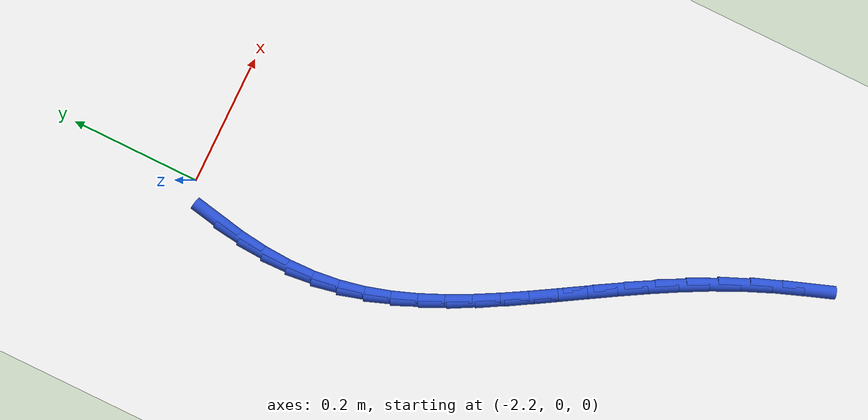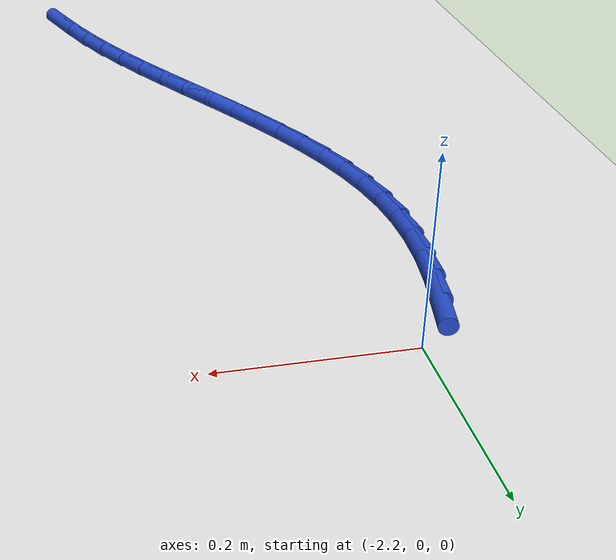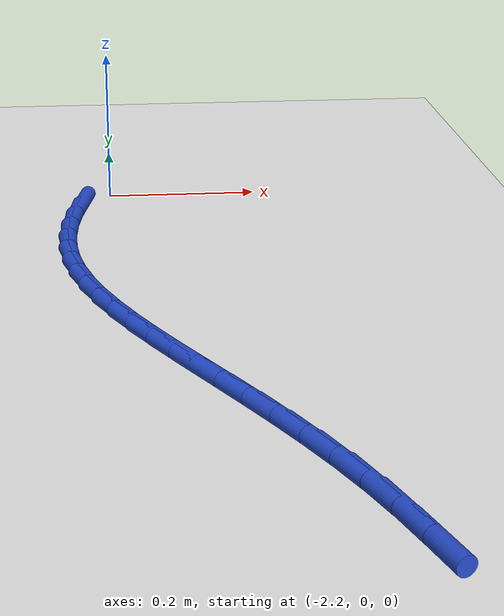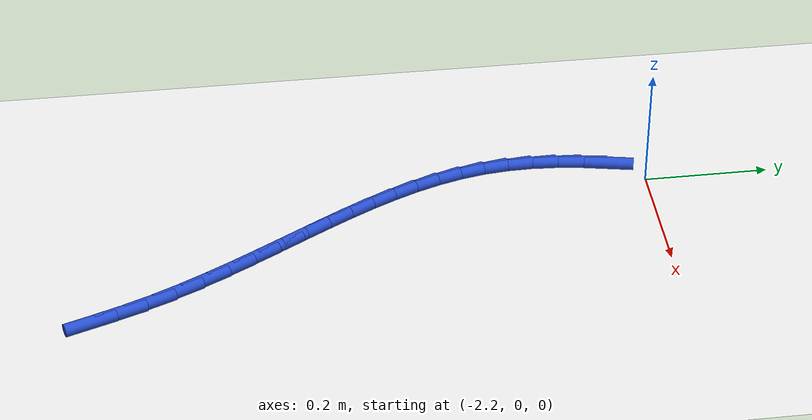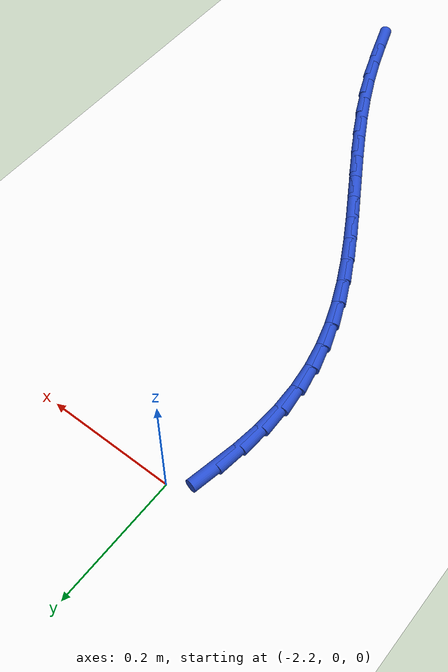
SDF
<sdf version="1.6">
 <world name="default">
  <model name="ground_plane">
   <static>1</static>
   <link name="link">
    <collision name="collision">
     <geometry><plane><normal>0 0 1</normal><size>100 100</size></plane></geometry>
     <surface><friction><ode><mu>100</mu><mu2>50</mu2></ode></friction></surface>
    </collision>
    <visual name="visual">
     <cast_shadows>0</cast_shadows>
     <geometry><plane><normal>0 0 1</normal><size>100 100</size></plane></geometry>
     <material>
      <script><uri>file://media/materials/scripts/gazebo.material</uri><name>Gazebo/WhiteGlow</name></script>
     </material>
    </visual>
   </link>
  </model>
  <model name="line">
   <link name="link_86">
    <pose>-2.2377645160590043 -0.05372641438890864 0.01 0 1.57 1.3761820714155157</pose>
    <collision name="collision">
     <geometry><cylinder><radius>0.01</radius><length>0.08</length></cylinder></geometry>
    </collision>
    <visual name="visual">
     <material>
      <script><name>Gazebo/Blue</name><uri>file://media/materials/scripts/gazebo.material</uri></script>
     </material>
     <geometry><cylinder><radius>0.01</radius><length>0.08</length></cylinder></geometry>
    </visual>
   </link>
   <link name="link_87">
    <pose>-2.2459971719491008 -0.09549342681061923 0.01 0 1.57 1.4425033524744262</pose>
    <collision name="collision">
     <geometry><cylinder><radius>0.01</radius><length>0.08</length></cylinder></geometry>
    </collision>
    <visual name="visual">
     <material>
      <script><name>Gazebo/Blue</name><uri>file://media/materials/scripts/gazebo.material</uri></script>
     </material>
     <geometry><cylinder><radius>0.01</radius><length>0.08</length></cylinder></geometry>
    </visual>
   </link>
   <link name="link_88">
    <pose>-2.2513437085406864 -0.1369389646153571 0.01 0 1.57 1.515605519801401</pose>
    <collision name="collision">
     <geometry><cylinder><radius>0.01</radius><length>0.08</length></cylinder></geometry>
    </collision>
    <visual name="visual">
     <material>
      <script><name>Gazebo/Blue</name><uri>file://media/materials/scripts/gazebo.material</uri></script>
     </material>
     <geometry><cylinder><radius>0.01</radius><length>0.08</length></cylinder></geometry>
    </visual>
   </link>
   <link name="link_89">
    <pose>-2.253608238366018 -0.1779282200711234 0.01 0 1.57 -1.5457171695179224</pose>
    <collision name="collision">
     <geometry><cylinder><radius>0.01</radius><length>0.08</length></cylinder></geometry>
    </collision>
    <visual name="visual">
     <material>
      <script><name>Gazebo/Blue</name><uri>file://media/materials/scripts/gazebo.material</uri></script>
     </material>
     <geometry><cylinder><radius>0.01</radius><length>0.08</length></cylinder></geometry>
    </visual>
   </link>
   <link name="link_90">
    <pose>-2.252594873957352 -0.2183263854459171 0.01 0 1.57 -1.4581852434171996</pose>
    <collision name="collision">
     <geometry><cylinder><radius>0.01</radius><length>0.08</length></cylinder></geometry>
    </collision>
    <visual name="visual">
     <material>
      <script><name>Gazebo/Blue</name><uri>file://media/materials/scripts/gazebo.material</uri></script>
     </material>
     <geometry><cylinder><radius>0.01</radius><length>0.08</length></cylinder></geometry>
    </visual>
   </link>
   <link name="link_91">
    <pose>-2.2481083224650704 -0.2579989493656181 0.01 0 1.57 -1.3679502620252153</pose>
    <collision name="collision">
     <geometry><cylinder><radius>0.01</radius><length>0.08</length></cylinder></geometry>
    </collision>
    <visual name="visual">
     <material>
      <script><name>Gazebo/Blue</name><uri>file://media/materials/scripts/gazebo.material</uri></script>
     </material>
     <geometry><cylinder><radius>0.01</radius><length>0.08</length></cylinder></geometry>
    </visual>
   </link>
   <link name="link_92">
    <pose>-2.2401095615766837 -0.2968892857458129 0.01 0 1.57 -1.286187726089869</pose>
    <collision name="collision">
     <geometry><cylinder><radius>0.01</radius><length>0.08</length></cylinder></geometry>
    </collision>
    <visual name="visual">
     <material>
      <script><name>Gazebo/Blue</name><uri>file://media/materials/scripts/gazebo.material</uri></script>
     </material>
     <geometry><cylinder><radius>0.01</radius><length>0.08</length></cylinder></geometry>
    </visual>
   </link>
   <link name="link_93">
    <pose>-2.228924382775723 -0.3351225918240899 0.01 0 1.57 -1.2156073930035167</pose>
    <collision name="collision">
     <geometry><cylinder><radius>0.01</radius><length>0.08</length></cylinder></geometry>
    </collision>
    <visual name="visual">
     <material>
      <script><name>Gazebo/Blue</name><uri>file://media/materials/scripts/gazebo.material</uri></script>
     </material>
     <geometry><cylinder><radius>0.01</radius><length>0.08</length></cylinder></geometry>
    </visual>
   </link>
   <link name="link_94">
    <pose>-2.2149305438873 -0.37284996488063965 0.01 0 1.57 -1.1567193964823947</pose>
    <collision name="collision">
     <geometry><cylinder><radius>0.01</radius><length>0.08</length></cylinder></geometry>
    </collision>
    <visual name="visual">
     <material>
      <script><name>Gazebo/Blue</name><uri>file://media/materials/scripts/gazebo.material</uri></script>
     </material>
     <geometry><cylinder><radius>0.01</radius><length>0.08</length></cylinder></geometry>
    </visual>
   </link>
   <link name="link_95">
    <pose>-2.198505802736524 -0.41022250219565054 0.01 0 1.57 -1.1094438876946617</pose>
    <collision name="collision">
     <geometry><cylinder><radius>0.01</radius><length>0.08</length></cylinder></geometry>
    </collision>
    <visual name="visual">
     <material>
      <script><name>Gazebo/Blue</name><uri>file://media/materials/scripts/gazebo.material</uri></script>
     </material>
     <geometry><cylinder><radius>0.01</radius><length>0.08</length></cylinder></geometry>
    </visual>
   </link>
   <link name="link_96">
    <pose>-2.1800279171485073 -0.44739130104931296 0.01 0 1.57 -1.0733599521147652</pose>
    <collision name="collision">
     <geometry><cylinder><radius>0.01</radius><length>0.08</length></cylinder></geometry>
    </collision>
    <visual name="visual">
     <material>
      <script><name>Gazebo/Blue</name><uri>file://media/materials/scripts/gazebo.material</uri></script>
     </material>
     <geometry><cylinder><radius>0.01</radius><length>0.08</length></cylinder></geometry>
    </visual>
   </link>
   <link name="link_97">
    <pose>-2.1598746449483595 -0.48450745872181683 0.01 0 1.57 -1.0479025266251936</pose>
    <collision name="collision">
     <geometry><cylinder><radius>0.01</radius><length>0.08</length></cylinder></geometry>
    </collision>
    <visual name="visual">
     <material>
      <script><name>Gazebo/Blue</name><uri>file://media/materials/scripts/gazebo.material</uri></script>
     </material>
     <geometry><cylinder><radius>0.01</radius><length>0.08</length></cylinder></geometry>
    </visual>
   </link>
   <link name="link_98">
    <pose>-2.1384237439611917 -0.5217220724933519 0.01 0 1.57 -1.0324938497927232</pose>
    <collision name="collision">
     <geometry><cylinder><radius>0.01</radius><length>0.08</length></cylinder></geometry>
    </collision>
    <visual name="visual">
     <material>
      <script><name>Gazebo/Blue</name><uri>file://media/materials/scripts/gazebo.material</uri></script>
     </material>
     <geometry><cylinder><radius>0.01</radius><length>0.08</length></cylinder></geometry>
    </visual>
   </link>
   <link name="link_99">
    <pose>-2.116052972012115 -0.5591862396441087 0.01 0 1.57 -1.0266181769225484</pose>
    <collision name="collision">
     <geometry><cylinder><radius>0.01</radius><length>0.08</length></cylinder></geometry>
    </collision>
    <visual name="visual">
     <material>
      <script><name>Gazebo/Blue</name><uri>file://media/materials/scripts/gazebo.material</uri></script>
     </material>
     <geometry><cylinder><radius>0.01</radius><length>0.08</length></cylinder></geometry>
    </visual>
   </link>
   <link name="link_100">
    <pose>-2.0931400869262404 -0.5970510574542758 0.01 0 1.57 -1.0298544494652497</pose>
    <collision name="collision">
     <geometry><cylinder><radius>0.01</radius><length>0.08</length></cylinder></geometry>
    </collision>
    <visual name="visual">
     <material>
      <script><name>Gazebo/Blue</name><uri>file://media/materials/scripts/gazebo.material</uri></script>
     </material>
     <geometry><cylinder><radius>0.01</radius><length>0.08</length></cylinder></geometry>
    </visual>
   </link>
   <link name="link_101">
    <pose>-2.070062846528679 -0.6354676232040435 0.01 0 1.57 -1.041879631007983</pose>
    <collision name="collision">
     <geometry><cylinder><radius>0.01</radius><length>0.08</length></cylinder></geometry>
    </collision>
    <visual name="visual">
     <material>
      <script><name>Gazebo/Blue</name><uri>file://media/materials/scripts/gazebo.material</uri></script>
     </material>
     <geometry><cylinder><radius>0.01</radius><length>0.08</length></cylinder></geometry>
    </visual>
   </link>
   <link name="link_102">
    <pose>-2.0471990086445397 -0.6745870341736014 0.01 0 1.57 -1.0624511637822287</pose>
    <collision name="collision">
     <geometry><cylinder><radius>0.01</radius><length>0.08</length></cylinder></geometry>
    </collision>
    <visual name="visual">
     <material>
      <script><name>Gazebo/Blue</name><uri>file://media/materials/scripts/gazebo.material</uri></script>
     </material>
     <geometry><cylinder><radius>0.01</radius><length>0.08</length></cylinder></geometry>
    </visual>
   </link>
   <link name="link_103">
    <pose>-2.0249263310989356 -0.7145603876431398 0.01 0 1.57 -1.091373182689228</pose>
    <collision name="collision">
     <geometry><cylinder><radius>0.01</radius><length>0.08</length></cylinder></geometry>
    </collision>
    <visual name="visual">
     <material>
      <script><name>Gazebo/Blue</name><uri>file://media/materials/scripts/gazebo.material</uri></script>
     </material>
     <geometry><cylinder><radius>0.01</radius><length>0.08</length></cylinder></geometry>
    </visual>
   </link>
   <link name="link_104">
    <pose>-2.003622571716976 -0.7555387808928489 0.01 0 1.57 -1.128448821963375</pose>
    <collision name="collision">
     <geometry><cylinder><radius>0.01</radius><length>0.08</length></cylinder></geometry>
    </collision>
    <visual name="visual">
     <material>
      <script><name>Gazebo/Blue</name><uri>file://media/materials/scripts/gazebo.material</uri></script>
     </material>
     <geometry><cylinder><radius>0.01</radius><length>0.08</length></cylinder></geometry>
    </visual>
   </link>
   <link name="link_105">
    <pose>-1.9836654883237737 -0.7976733112029174 0.01 0 1.57 -1.1733625011910476</pose>
    <collision name="collision">
     <geometry><cylinder><radius>0.01</radius><length>0.08</length></cylinder></geometry>
    </collision>
    <visual name="visual">
     <material>
      <script><name>Gazebo/Blue</name><uri>file://media/materials/scripts/gazebo.material</uri></script>
     </material>
     <geometry><cylinder><radius>0.01</radius><length>0.08</length></cylinder></geometry>
    </visual>
   </link>
   <link name="link_106">
    <pose>-1.9654307818061143 -0.8411129017752083 0.01 0 1.57 -1.2146667010125252</pose>
    <collision name="collision">
     <geometry><cylinder><radius>0.01</radius><length>0.08</length></cylinder></geometry>
    </collision>
    <visual name="visual">
     <material>
      <script><name>Gazebo/Blue</name><uri>file://media/materials/scripts/gazebo.material</uri></script>
     </material>
     <geometry><cylinder><radius>0.01</radius><length>0.08</length></cylinder></geometry>
    </visual>
   </link>
   <link name="link_107">
    <pose>-1.9488897847727067 -0.8855790792777132 0.01 0 1.57 -1.2287749456263017</pose>
    <collision name="collision">
     <geometry><cylinder><radius>0.01</radius><length>0.08</length></cylinder></geometry>
    </collision>
    <visual name="visual">
     <material>
      <script><name>Gazebo/Blue</name><uri>file://media/materials/scripts/gazebo.material</uri></script>
     </material>
     <geometry><cylinder><radius>0.01</radius><length>0.08</length></cylinder></geometry>
    </visual>
   </link>
  </model>
 </world>
</sdf>
